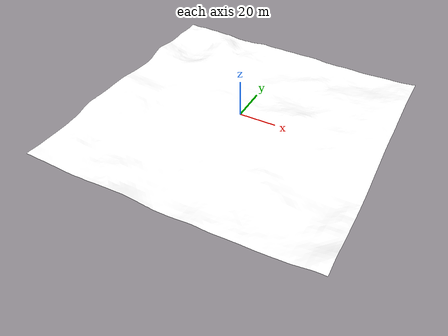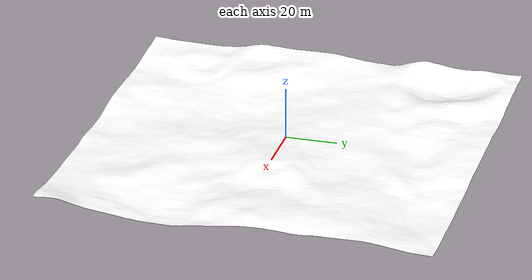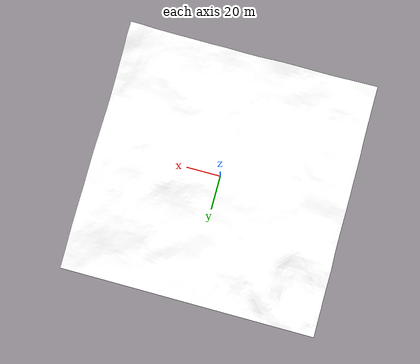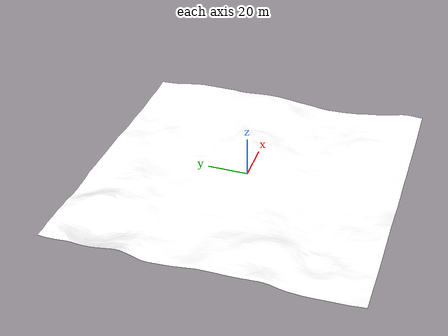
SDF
<?xml version="1.0" ?>
<sdf version="1.9">
  <world name="demo_world">
    <physics name="4ms" type="dart">
      <max_step_size>0.004</max_step_size>
      <real_time_factor>1.0</real_time_factor>
    </physics>

    <plugin
      filename="gz-sim-physics-system"
      name="gz::sim::systems::Physics">
    </plugin>
    <plugin
      filename="gz-sim-sensors-system"
      name="gz::sim::systems::Sensors">
      <render_engine>ogre2</render_engine>
    </plugin>
    <plugin
      filename="gz-sim-imu-system"
      name="gz::sim::systems::Imu">
    </plugin>
    <plugin
      filename="gz-sim-user-commands-system"
      name="gz::sim::systems::UserCommands">
    </plugin>
    <plugin
      filename="gz-sim-scene-broadcaster-system"
      name="gz::sim::systems::SceneBroadcaster">
    </plugin>

    <scene>
      <grid>false</grid>
      <ambient>1 1 1</ambient>
    </scene>

    <!-- Saint-Guillhem-le-Désert -->
    <spherical_coordinates>
      <surface_model>EARTH_WGS84</surface_model>
      <world_frame_orientation>ENU</world_frame_orientation>
      <latitude_deg>43.7344</latitude_deg>
      <longitude_deg>3.5490</longitude_deg>
      <elevation>54</elevation>
      <heading_deg>0</heading_deg>
    </spherical_coordinates>

    <gui>

      <!-- 3D scene -->
      <plugin filename="GzScene3D" name="3D View">
        <gz-gui>
          <title>3D View</title>
          <property type="bool" key="showTitleBar">false</property>
          <property type="string" key="state">docked</property>
        </gz-gui>

        <engine>ogre2</engine>
        <scene>scene</scene>
        <ambient_light>1 1 1</ambient_light>
        <background_color>0.8 0.8 0.8</background_color>
        <sky></sky>
      </plugin>

      <!-- Play / pause / step -->
      <plugin filename="WorldControl" name="World control">
        <gz-gui>
          <title>World control</title>
          <property type="bool" key="showTitleBar">false</property>
          <property type="bool" key="resizable">false</property>
          <property type="double" key="height">72</property>
          <property type="double" key="width">121</property>
          <property type="double" key="z">1</property>

          <property type="string" key="state">floating</property>
          <anchors target="3D View">
            <line own="left" target="left"/>
            <line own="bottom" target="bottom"/>
          </anchors>
        </gz-gui>

        <play_pause>true</play_pause>
        <step>true</step>
        <start_paused>true</start_paused>

      </plugin>

      <!-- Time / RTF -->
      <plugin filename="WorldStats" name="World stats">
        <gz-gui>
          <title>World stats</title>
          <property type="bool" key="showTitleBar">false</property>
          <property type="bool" key="resizable">false</property>
          <property type="double" key="height">110</property>
          <property type="double" key="width">290</property>
          <property type="double" key="z">1</property>

          <property type="string" key="state">floating</property>
          <anchors target="3D View">
            <line own="right" target="right"/>
            <line own="bottom" target="bottom"/>
          </anchors>
        </gz-gui>

        <sim_time>true</sim_time>
        <real_time>true</real_time>
        <real_time_factor>true</real_time_factor>
        <iterations>true</iterations>

      </plugin>

      <!-- Translate / rotate -->
      <plugin filename="TransformControl" name="Transform control">
        <gz-gui>
          <property key="resizable" type="bool">false</property>
          <property key="x" type="double">0</property>
          <property key="y" type="double">50</property>
          <property key="width" type="double">250</property>
          <property key="height" type="double">50</property>
          <property key="state" type="string">floating</property>
          <property key="showTitleBar" type="bool">false</property>
          <property key="cardBackground" type="string">#777777</property>
        </gz-gui>
      </plugin>

      <!-- Inspector -->
      <plugin filename="ComponentInspector" name="Component inspector">
        <gz-gui>
          <property type="string" key="state">docked_collapsed</property>
        </gz-gui>
      </plugin>

      <!-- Entity tree -->
      <plugin filename="EntityTree" name="Entity tree">
        <gz-gui>
          <property type="string" key="state">docked_collapsed</property>
        </gz-gui>
      </plugin>

      <!-- Insert simple shapes -->
      <plugin filename="Shapes" name="Shapes">
        <gz-gui>
          <property key="resizable" type="bool">false</property>
          <property key="x" type="double">0</property>
          <property key="y" type="double">0</property>
          <property key="width" type="double">250</property>
          <property key="height" type="double">50</property>
          <property key="state" type="string">floating</property>
          <property key="showTitleBar" type="bool">false</property>
          <property key="cardBackground" type="string">#666666</property>
        </gz-gui>
      </plugin>
    </gui>

    <light type="directional" name="sun">
      <cast_shadows>true</cast_shadows>
      <pose>0 0 10 0 0 0</pose>
      <diffuse>0.8 0.8 0.8 1</diffuse>
      <specular>0.2 0.2 0.2 1</specular>
      <attenuation>
        <range>1000</range>
        <constant>0.9</constant>
        <linear>0.01</linear>
        <quadratic>0.001</quadratic>
      </attenuation>
      <direction>0.0 0.5 -0.9</direction>
    </light>

    <include>
      <pose>0 0 6.2 0 0 0</pose>
      <uri>model://lunar_surface5</uri>
    </include>

  </world>
</sdf>

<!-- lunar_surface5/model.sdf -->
<sdf version="1.9">
  <model name="lunar_surface5">
    <static>True</static>
    <link name="lunar_surface5_link">
      <visual name="lunar_surface5_visual">
        <geometry>
          <mesh>
            <uri>meshes/visual/lunar_surface5.obj</uri>
            <scale>50 50 50</scale>
          </mesh>
        </geometry>
        <material>
          <pbr>
            <metal>
              <albedo_map>materials/textures/lunar_surface_3_color.png</albedo_map>
              <roughness_map>materials/textures/lunar_surface_3_roughness.png</roughness_map>
              <metalness_map>materials/textures/lunar_surface_3_metalness.png</metalness_map>
              <normal_map>materials/textures/lunar_surface_3_normal.png</normal_map>
            </metal>
          </pbr>
          <diffuse>1.0 1.0 1.0</diffuse>
          <specular>0.05 0.05 0.05</specular>
        </material>
      </visual>
      <collision name="lunar_surface5_collision">
        <geometry>
          <mesh>
            <uri>meshes/collision/lunar_surface5.stl</uri>
            <scale>50 50 50</scale>
          </mesh>
        </geometry>
        <surface>
          <friction>
            <ode>
              <mu>50</mu>
            </ode>
            <bullet>
              <friction>1</friction>
              <friction2>1</friction2>
              <rolling_friction>0.1</rolling_friction>
            </bullet>
          </friction>
        </surface>
      </collision>
    </link>
  </model>
</sdf>
